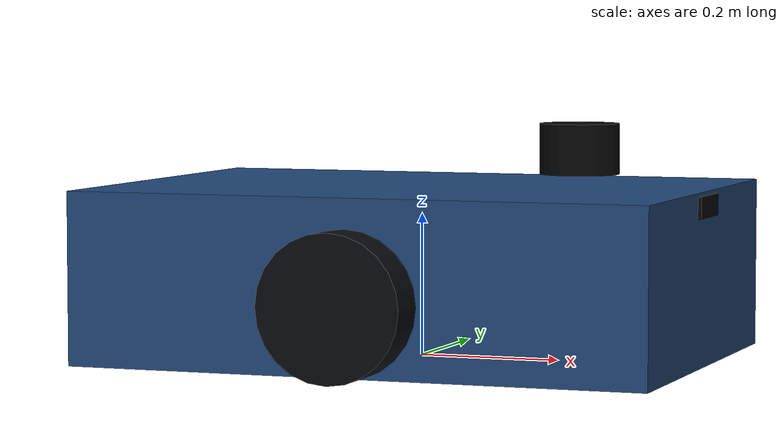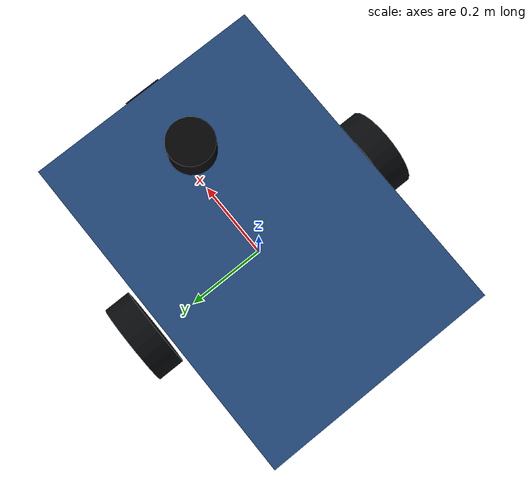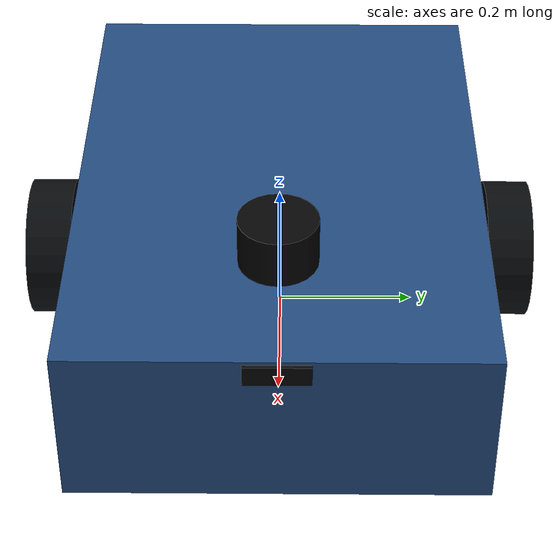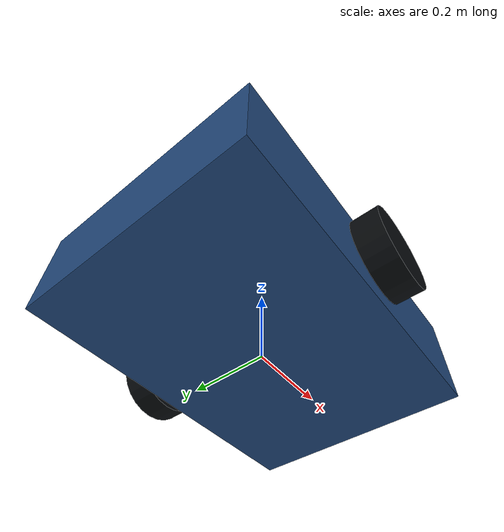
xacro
<?xml version="1.0"?>
<robot xmlns:xacro="http://www.ros.org/wiki/xacro" name="amr_demo_robot">
  <xacro:property name="base_length" value="0.82"/>
  <xacro:property name="base_width" value="0.58"/>
  <xacro:property name="base_height" value="0.24"/>
  <xacro:property name="wheel_radius" value="0.10"/>
  <xacro:property name="wheel_width" value="0.065"/>
  <xacro:property name="wheel_y" value="0.335"/>

  <material name="base_blue">
    <color rgba="0.13 0.28 0.48 1.0"/>
  </material>
  <material name="wheel_black">
    <color rgba="0.03 0.04 0.05 1.0"/>
  </material>
  <material name="lidar_black">
    <color rgba="0.02 0.02 0.02 1.0"/>
  </material>

  <link name="base_footprint"/>

  <joint name="base_footprint_joint" type="fixed">
    <parent link="base_footprint"/>
    <child link="base_link"/>
    <origin xyz="0 0 0.12" rpy="0 0 0"/>
  </joint>

  <link name="base_link">
    <visual>
      <geometry>
        <box size="${base_length} ${base_width} ${base_height}"/>
      </geometry>
      <material name="base_blue"/>
    </visual>
    <collision>
      <geometry>
        <box size="${base_length} ${base_width} ${base_height}"/>
      </geometry>
    </collision>
  </link>

  <link name="left_wheel">
    <visual>
      <origin xyz="0 0 0" rpy="1.57079632679 0 0"/>
      <geometry>
        <cylinder radius="${wheel_radius}" length="${wheel_width}"/>
      </geometry>
      <material name="wheel_black"/>
    </visual>
  </link>

  <joint name="left_wheel_joint" type="continuous">
    <parent link="base_link"/>
    <child link="left_wheel"/>
    <origin xyz="0 ${wheel_y} -0.02" rpy="0 0 0"/>
    <axis xyz="0 1 0"/>
  </joint>

  <link name="right_wheel">
    <visual>
      <origin xyz="0 0 0" rpy="1.57079632679 0 0"/>
      <geometry>
        <cylinder radius="${wheel_radius}" length="${wheel_width}"/>
      </geometry>
      <material name="wheel_black"/>
    </visual>
  </link>

  <joint name="right_wheel_joint" type="continuous">
    <parent link="base_link"/>
    <child link="right_wheel"/>
    <origin xyz="0 -${wheel_y} -0.02" rpy="0 0 0"/>
    <axis xyz="0 1 0"/>
  </joint>

  <link name="front_caster">
    <visual>
      <geometry>
        <sphere radius="0.045"/>
      </geometry>
      <material name="wheel_black"/>
    </visual>
  </link>

  <joint name="front_caster_joint" type="fixed">
    <parent link="base_link"/>
    <child link="front_caster"/>
    <origin xyz="0.33 0 -0.065" rpy="0 0 0"/>
  </joint>

  <link name="lidar_link">
    <visual>
      <geometry>
        <cylinder radius="0.055" length="0.07"/>
      </geometry>
      <material name="lidar_black"/>
    </visual>
  </link>

  <joint name="lidar_joint" type="fixed">
    <parent link="base_link"/>
    <child link="lidar_link"/>
    <origin xyz="0.23 0 0.175" rpy="0 0 0"/>
  </joint>

  <!-- Forward-facing docking camera. camera_link is the mounting frame;
       camera_optical_frame follows the REP-103 optical convention
       (x right, y down, z forward) used by amr_vision. -->
  <link name="camera_link">
    <visual>
      <geometry>
        <box size="0.03 0.09 0.03"/>
      </geometry>
      <material name="lidar_black"/>
    </visual>
  </link>

  <joint name="camera_joint" type="fixed">
    <parent link="base_link"/>
    <child link="camera_link"/>
    <origin xyz="0.40 0 0.10" rpy="0 0 0"/>
  </joint>

  <link name="camera_optical_frame"/>

  <joint name="camera_optical_joint" type="fixed">
    <parent link="camera_link"/>
    <child link="camera_optical_frame"/>
    <origin xyz="0 0 0" rpy="-1.57079632679 0 -1.57079632679"/>
  </joint>
</robot>
